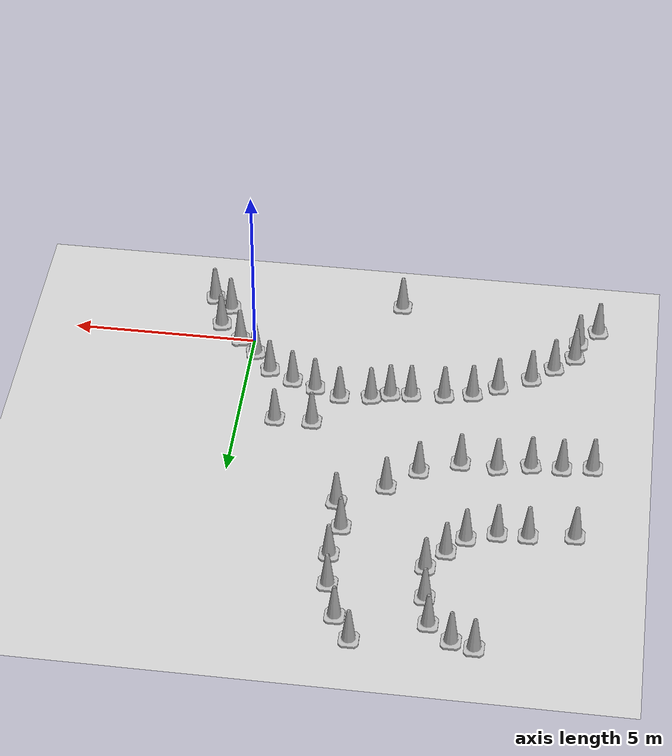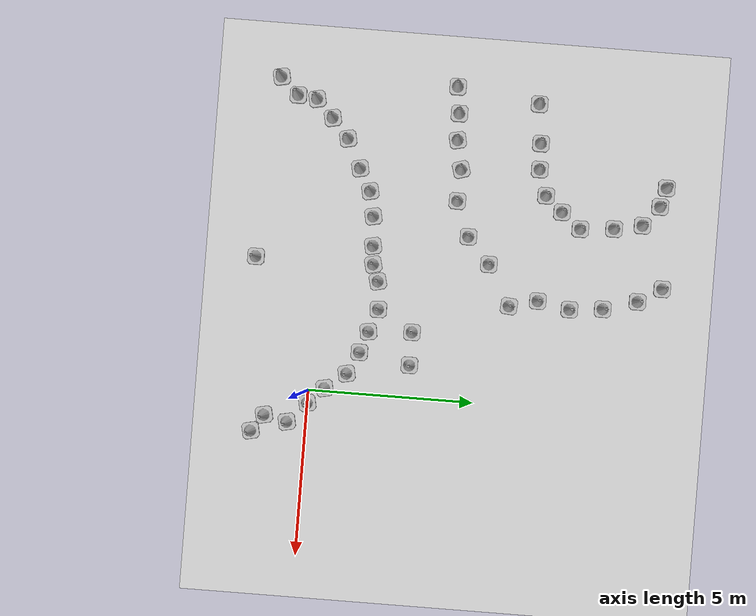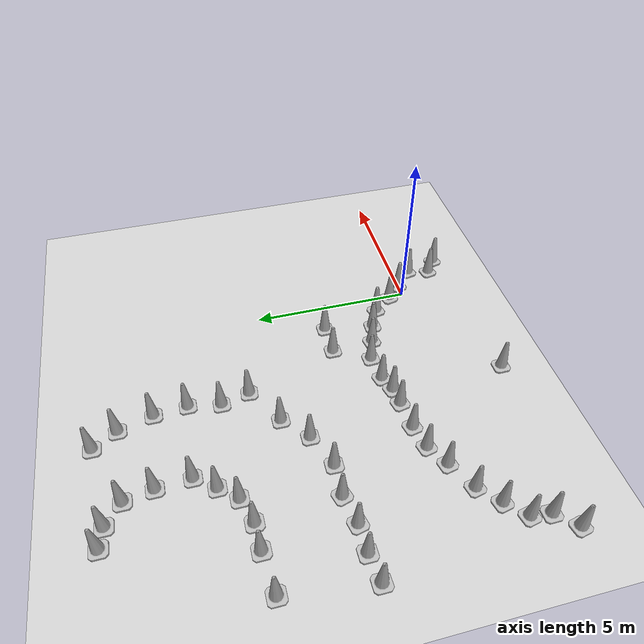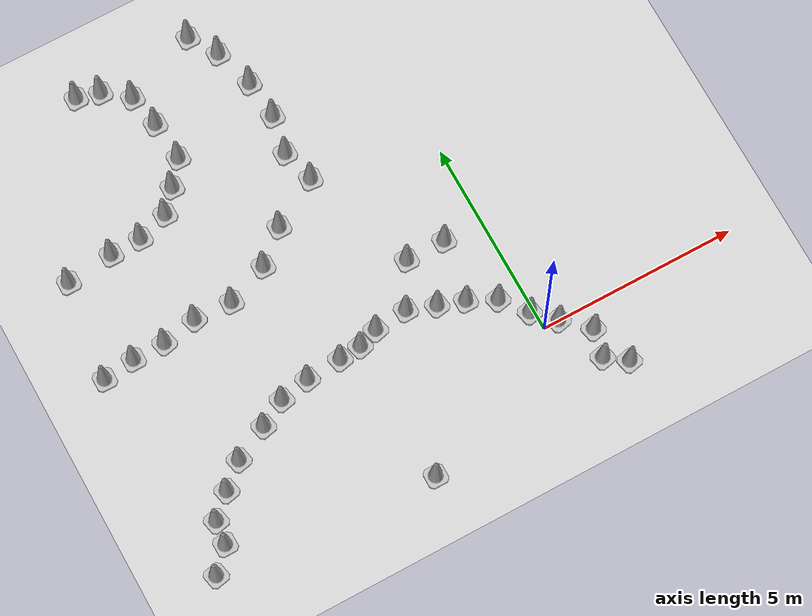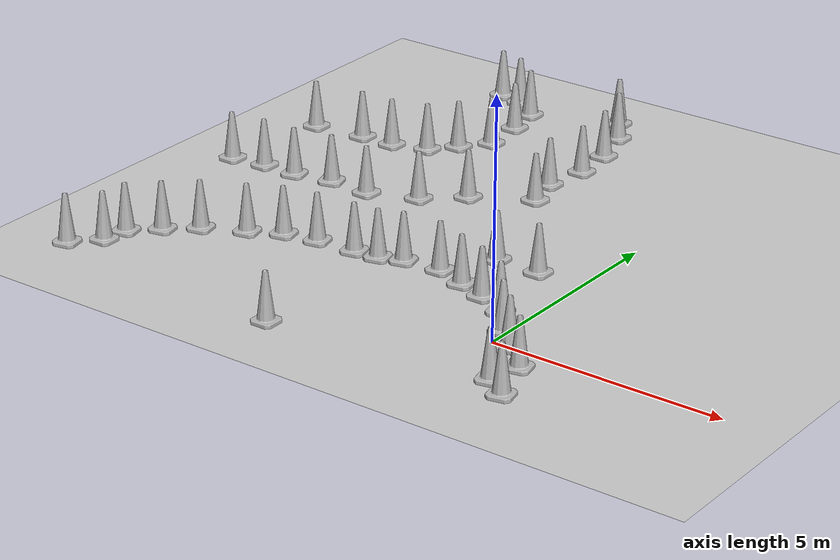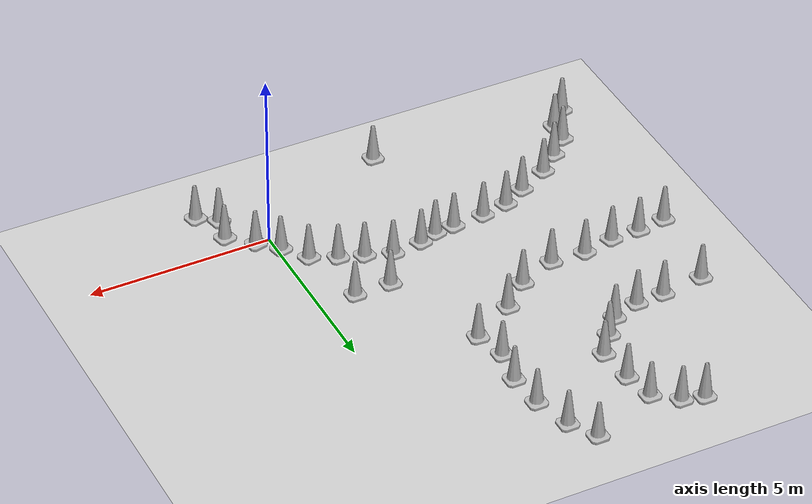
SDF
<sdf version="1.7">
 <world name="empty">
  <model name="ground_plane">
   <static>1</static>
   <link name="link">
    <collision name="collision">
     <geometry><plane><normal>0 0 1</normal><size>100 100</size></plane></geometry>
     <surface>
      <contact><collide_bitmask>65535</collide_bitmask></contact>
      <friction><ode><mu>100</mu><mu2>50</mu2></ode></friction>
     </surface>
    </collision>
    <visual name="visual">
     <cast_shadows>0</cast_shadows>
     <geometry><plane><normal>0 0 1</normal><size>100 100</size></plane></geometry>
     <material>
      <script><uri>file://media/materials/scripts/gazebo.material</uri><name>Gazebo/Grey</name></script>
     </material>
    </visual>
   </link>
  </model>
  <model name="Construction Cone">
   <link name="link">
    <collision name="collision">
     <geometry>
      <mesh><scale>10 10 10</scale><uri>model://construction_cone/meshes/construction_cone.dae</uri></mesh>
     </geometry>
    </collision>
    <visual name="visual">
     <geometry>
      <mesh><scale>10 10 10</scale><uri>model://construction_cone/meshes/construction_cone.dae</uri></mesh>
     </geometry>
    </visual>
    <inertial>
     <inertia><ixx>1</ixx><ixy>0</ixy><ixz>0</ixz><iyy>1</iyy><iyz>0</iyz><izz>1</izz></inertia>
     <mass>1</mass>
    </inertial>
   </link>
   <pose>-9.18463 6.3043 -0 0 -1e-06 0</pose>
  </model>
  <model name="Construction Cone_clone">
   <link name="link">
    <collision name="collision">
     <geometry>
      <mesh><scale>10 10 10</scale><uri>model://construction_cone/meshes/construction_cone.dae</uri></mesh>
     </geometry>
    </collision>
    <visual name="visual">
     <geometry>
      <mesh><scale>10 10 10</scale><uri>model://construction_cone/meshes/construction_cone.dae</uri></mesh>
     </geometry>
    </visual>
    <inertial>
     <inertia><ixx>1</ixx><ixy>0</ixy><ixz>0</ixz><iyy>1</iyy><iyz>0</iyz><izz>1</izz></inertia>
     <mass>1</mass>
    </inertial>
   </link>
   <pose>-9.5154 3.80513 -1e-05 -1e-06 0 0</pose>
  </model>
  <model name="Construction Cone_clone_0">
   <link name="link">
    <collision name="collision">
     <geometry>
      <mesh><scale>10 10 10</scale><uri>model://construction_cone/meshes/construction_cone.dae</uri></mesh>
     </geometry>
    </collision>
    <visual name="visual">
     <geometry>
      <mesh><scale>10 10 10</scale><uri>model://construction_cone/meshes/construction_cone.dae</uri></mesh>
     </geometry>
    </visual>
    <inertial>
     <inertia><ixx>1</ixx><ixy>0</ixy><ixz>0</ixz><iyy>1</iyy><iyz>0</iyz><izz>1</izz></inertia>
     <mass>1</mass>
    </inertial>
   </link>
   <pose>-8 6.44007 -0 0 -1e-06 0</pose>
  </model>
  <model name="Construction Cone_clone_1">
   <link name="link">
    <collision name="collision">
     <geometry>
      <mesh><scale>10 10 10</scale><uri>model://construction_cone/meshes/construction_cone.dae</uri></mesh>
     </geometry>
    </collision>
    <visual name="visual">
     <geometry>
      <mesh><scale>10 10 10</scale><uri>model://construction_cone/meshes/construction_cone.dae</uri></mesh>
     </geometry>
    </visual>
    <inertial>
     <inertia><ixx>1</ixx><ixy>0</ixy><ixz>0</ixz><iyy>1</iyy><iyz>0</iyz><izz>1</izz></inertia>
     <mass>1</mass>
    </inertial>
   </link>
   <pose>-7.21438 6.4666 -0 0 -1e-06 -0.002933</pose>
  </model>
  <model name="Construction Cone_clone_3">
   <link name="link">
    <collision name="collision">
     <geometry>
      <mesh><scale>10 10 10</scale><uri>model://construction_cone/meshes/construction_cone.dae</uri></mesh>
     </geometry>
    </collision>
    <visual name="visual">
     <geometry>
      <mesh><scale>10 10 10</scale><uri>model://construction_cone/meshes/construction_cone.dae</uri></mesh>
     </geometry>
    </visual>
    <inertial>
     <inertia><ixx>1</ixx><ixy>0</ixy><ixz>0</ixz><iyy>1</iyy><iyz>0</iyz><izz>1</izz></inertia>
     <mass>1</mass>
    </inertial>
   </link>
   <pose>-7.90339 3.92291 -0 -0 -1e-06 0.214535</pose>
  </model>
  <model name="Construction Cone_clone_7">
   <link name="link">
    <collision name="collision">
     <geometry>
      <mesh><scale>10 10 10</scale><uri>model://construction_cone/meshes/construction_cone.dae</uri></mesh>
     </geometry>
    </collision>
    <visual name="visual">
     <geometry>
      <mesh><scale>10 10 10</scale><uri>model://construction_cone/meshes/construction_cone.dae</uri></mesh>
     </geometry>
    </visual>
    <inertial>
     <inertia><ixx>1</ixx><ixy>0</ixy><ixz>0</ixz><iyy>1</iyy><iyz>0</iyz><izz>1</izz></inertia>
     <mass>1</mass>
    </inertial>
   </link>
   <pose>-6.43868 6.71892 -0 0 -0 0.002001</pose>
  </model>
  <model name="Construction Cone_clone_8">
   <link name="link">
    <collision name="collision">
     <geometry>
      <mesh><scale>10 10 10</scale><uri>model://construction_cone/meshes/construction_cone.dae</uri></mesh>
     </geometry>
    </collision>
    <visual name="visual">
     <geometry>
      <mesh><scale>10 10 10</scale><uri>model://construction_cone/meshes/construction_cone.dae</uri></mesh>
     </geometry>
    </visual>
    <inertial>
     <inertia><ixx>1</ixx><ixy>0</ixy><ixz>0</ixz><iyy>1</iyy><iyz>0</iyz><izz>1</izz></inertia>
     <mass>1</mass>
    </inertial>
   </link>
   <pose>-5.97964 7.2406 -0 0 -1e-06 0.001989</pose>
  </model>
  <model name="Construction Cone_clone_9">
   <link name="link">
    <collision name="collision">
     <geometry>
      <mesh><scale>10 10 10</scale><uri>model://construction_cone/meshes/construction_cone.dae</uri></mesh>
     </geometry>
    </collision>
    <visual name="visual">
     <geometry>
      <mesh><scale>10 10 10</scale><uri>model://construction_cone/meshes/construction_cone.dae</uri></mesh>
     </geometry>
    </visual>
    <inertial>
     <inertia><ixx>1</ixx><ixy>0</ixy><ixz>0</ixz><iyy>1</iyy><iyz>0</iyz><izz>1</izz></inertia>
     <mass>1</mass>
    </inertial>
   </link>
   <pose>-5.51474 7.83077 -0 -0 -1e-06 0.000735</pose>
  </model>
  <model name="Construction Cone_clone_11">
   <link name="link">
    <collision name="collision">
     <geometry>
      <mesh><scale>10 10 10</scale><uri>model://construction_cone/meshes/construction_cone.dae</uri></mesh>
     </geometry>
    </collision>
    <visual name="visual">
     <geometry>
      <mesh><scale>10 10 10</scale><uri>model://construction_cone/meshes/construction_cone.dae</uri></mesh>
     </geometry>
    </visual>
    <inertial>
     <inertia><ixx>1</ixx><ixy>0</ixy><ixz>0</ixz><iyy>1</iyy><iyz>0</iyz><izz>1</izz></inertia>
     <mass>1</mass>
    </inertial>
   </link>
   <pose>-3.01658 5.86067 -7e-06 -4e-06 -0 -0.086805</pose>
  </model>
  <model name="Construction Cone_clone_12">
   <link name="link">
    <collision name="collision">
     <geometry>
      <mesh><scale>10 10 10</scale><uri>model://construction_cone/meshes/construction_cone.dae</uri></mesh>
     </geometry>
    </collision>
    <visual name="visual">
     <geometry>
      <mesh><scale>10 10 10</scale><uri>model://construction_cone/meshes/construction_cone.dae</uri></mesh>
     </geometry>
    </visual>
    <inertial>
     <inertia><ixx>1</ixx><ixy>0</ixy><ixz>0</ixz><iyy>1</iyy><iyz>0</iyz><izz>1</izz></inertia>
     <mass>1</mass>
    </inertial>
   </link>
   <pose>-2 3 -0 0 -1e-06 0</pose>
  </model>
  <model name="Construction Cone_clone_15">
   <link name="link">
    <collision name="collision">
     <geometry>
      <mesh><scale>10 10 10</scale><uri>model://construction_cone/meshes/construction_cone.dae</uri></mesh>
     </geometry>
    </collision>
    <visual name="visual">
     <geometry>
      <mesh><scale>10 10 10</scale><uri>model://construction_cone/meshes/construction_cone.dae</uri></mesh>
     </geometry>
    </visual>
    <inertial>
     <inertia><ixx>1</ixx><ixy>0</ixy><ixz>0</ixz><iyy>1</iyy><iyz>0</iyz><izz>1</izz></inertia>
     <mass>1</mass>
    </inertial>
   </link>
   <pose>-1 3 -0 0 -1e-06 0</pose>
  </model>
  <model name="Construction Cone_clone_17">
   <link name="link">
    <collision name="collision">
     <geometry>
      <mesh><scale>10 10 10</scale><uri>model://construction_cone/meshes/construction_cone.dae</uri></mesh>
     </geometry>
    </collision>
    <visual name="visual">
     <geometry>
      <mesh><scale>10 10 10</scale><uri>model://construction_cone/meshes/construction_cone.dae</uri></mesh>
     </geometry>
    </visual>
    <inertial>
     <inertia><ixx>1</ixx><ixy>0</ixy><ixz>0</ixz><iyy>1</iyy><iyz>0</iyz><izz>1</izz></inertia>
     <mass>1</mass>
    </inertial>
   </link>
   <pose>-3.92107 -1.88779 -0 0 -0 0.002196</pose>
  </model>
  <model name="Construction Cone_clone_20">
   <link name="link">
    <collision name="collision">
     <geometry>
      <mesh><scale>10 10 10</scale><uri>model://construction_cone/meshes/construction_cone.dae</uri></mesh>
     </geometry>
    </collision>
    <visual name="visual">
     <geometry>
      <mesh><scale>10 10 10</scale><uri>model://construction_cone/meshes/construction_cone.dae</uri></mesh>
     </geometry>
    </visual>
    <inertial>
     <inertia><ixx>1</ixx><ixy>0</ixy><ixz>0</ixz><iyy>1</iyy><iyz>0</iyz><izz>1</izz></inertia>
     <mass>1</mass>
    </inertial>
   </link>
   <pose>-2.61076 1.92981 0 0 -0 0.029847</pose>
  </model>
  <model name="Construction Cone_clone_33">
   <link name="link">
    <collision name="collision">
     <geometry>
      <mesh><scale>10 10 10</scale><uri>model://construction_cone/meshes/construction_cone.dae</uri></mesh>
     </geometry>
    </collision>
    <visual name="visual">
     <geometry>
      <mesh><scale>10 10 10</scale><uri>model://construction_cone/meshes/construction_cone.dae</uri></mesh>
     </geometry>
    </visual>
    <inertial>
     <inertia><ixx>1</ixx><ixy>0</ixy><ixz>0</ixz><iyy>1</iyy><iyz>0</iyz><izz>1</izz></inertia>
     <mass>1</mass>
    </inertial>
   </link>
   <pose>-1.91574 1.68243 -0 0 -0 0.152894</pose>
  </model>
  <model name="Construction Cone_clone_35">
   <link name="link">
    <collision name="collision">
     <geometry>
      <mesh><scale>10 10 10</scale><uri>model://construction_cone/meshes/construction_cone.dae</uri></mesh>
     </geometry>
    </collision>
    <visual name="visual">
     <geometry>
      <mesh><scale>10 10 10</scale><uri>model://construction_cone/meshes/construction_cone.dae</uri></mesh>
     </geometry>
    </visual>
    <inertial>
     <inertia><ixx>1</ixx><ixy>0</ixy><ixz>0</ixz><iyy>1</iyy><iyz>0</iyz><izz>1</izz></inertia>
     <mass>1</mass>
    </inertial>
   </link>
   <pose>-1.27313 1.45906 0 1e-06 -1e-06 0.000419</pose>
  </model>
  <model name="Construction Cone_clone_59">
   <link name="link">
    <collision name="collision">
     <geometry>
      <mesh><scale>10 10 10</scale><uri>model://construction_cone/meshes/construction_cone.dae</uri></mesh>
     </geometry>
    </collision>
    <visual name="visual">
     <geometry>
      <mesh><scale>10 10 10</scale><uri>model://construction_cone/meshes/construction_cone.dae</uri></mesh>
     </geometry>
    </visual>
    <inertial>
     <inertia><ixx>1</ixx><ixy>0</ixy><ixz>0</ixz><iyy>1</iyy><iyz>0</iyz><izz>1</izz></inertia>
     <mass>1</mass>
    </inertial>
   </link>
   <pose>-4.51183 1.61968 -0 0 -0 0.206225</pose>
  </model>
  <model name="Construction Cone_clone_59_clone">
   <link name="link">
    <collision name="collision">
     <geometry>
      <mesh><scale>10 10 10</scale><uri>model://construction_cone/meshes/construction_cone.dae</uri></mesh>
     </geometry>
    </collision>
    <visual name="visual">
     <geometry>
      <mesh><scale>10 10 10</scale><uri>model://construction_cone/meshes/construction_cone.dae</uri></mesh>
     </geometry>
    </visual>
    <inertial>
     <inertia><ixx>1</ixx><ixy>0</ixy><ixz>0</ixz><iyy>1</iyy><iyz>0</iyz><izz>1</izz></inertia>
     <mass>1</mass>
    </inertial>
   </link>
   <pose>-5.40428 1.55794 -0 -0 -1e-06 0.206225</pose>
  </model>
  <model name="Construction Cone_clone_59_clone_0">
   <link name="link">
    <collision name="collision">
     <geometry>
      <mesh><scale>10 10 10</scale><uri>model://construction_cone/meshes/construction_cone.dae</uri></mesh>
     </geometry>
    </collision>
    <visual name="visual">
     <geometry>
      <mesh><scale>10 10 10</scale><uri>model://construction_cone/meshes/construction_cone.dae</uri></mesh>
     </geometry>
    </visual>
    <inertial>
     <inertia><ixx>1</ixx><ixy>0</ixy><ixz>0</ixz><iyy>1</iyy><iyz>0</iyz><izz>1</izz></inertia>
     <mass>1</mass>
    </inertial>
   </link>
   <pose>-0.599827 1.12459 -2e-06 4e-06 -0 0.206225</pose>
  </model>
  <model name="Construction Cone_clone_59_clone_1">
   <link name="link">
    <collision name="collision">
     <geometry>
      <mesh><scale>10 10 10</scale><uri>model://construction_cone/meshes/construction_cone.dae</uri></mesh>
     </geometry>
    </collision>
    <visual name="visual">
     <geometry>
      <mesh><scale>10 10 10</scale><uri>model://construction_cone/meshes/construction_cone.dae</uri></mesh>
     </geometry>
    </visual>
    <inertial>
     <inertia><ixx>1</ixx><ixy>0</ixy><ixz>0</ixz><iyy>1</iyy><iyz>0</iyz><izz>1</izz></inertia>
     <mass>1</mass>
    </inertial>
   </link>
   <pose>-0.106114 0.495019 -0 0 -0 0.206225</pose>
  </model>
  <model name="Construction Cone_clone_30_clone">
   <link name="link">
    <collision name="collision">
     <geometry>
      <mesh><scale>10 10 10</scale><uri>model://construction_cone/meshes/construction_cone.dae</uri></mesh>
     </geometry>
    </collision>
    <visual name="visual">
     <geometry>
      <mesh><scale>10 10 10</scale><uri>model://construction_cone/meshes/construction_cone.dae</uri></mesh>
     </geometry>
    </visual>
    <inertial>
     <inertia><ixx>1</ixx><ixy>0</ixy><ixz>0</ixz><iyy>1</iyy><iyz>0</iyz><izz>1</izz></inertia>
     <mass>1</mass>
    </inertial>
   </link>
   <pose>-8.88633 -0.991657 -0 0 -0 0.015434</pose>
  </model>
  <model name="Construction Cone_clone_59_clone_clone">
   <link name="link">
    <collision name="collision">
     <geometry>
      <mesh><scale>10 10 10</scale><uri>model://construction_cone/meshes/construction_cone.dae</uri></mesh>
     </geometry>
    </collision>
    <visual name="visual">
     <geometry>
      <mesh><scale>10 10 10</scale><uri>model://construction_cone/meshes/construction_cone.dae</uri></mesh>
     </geometry>
    </visual>
    <inertial>
     <inertia><ixx>1</ixx><ixy>0</ixy><ixz>0</ixz><iyy>1</iyy><iyz>0</iyz><izz>1</izz></inertia>
     <mass>1</mass>
    </inertial>
   </link>
   <pose>-6.1573 1.40512 -0 -0 -1e-06 0.206225</pose>
  </model>
  <model name="Construction Cone_clone_59_clone_clone_0">
   <link name="link">
    <collision name="collision">
     <geometry>
      <mesh><scale>10 10 10</scale><uri>model://construction_cone/meshes/construction_cone.dae</uri></mesh>
     </geometry>
    </collision>
    <visual name="visual">
     <geometry>
      <mesh><scale>10 10 10</scale><uri>model://construction_cone/meshes/construction_cone.dae</uri></mesh>
     </geometry>
    </visual>
    <inertial>
     <inertia><ixx>1</ixx><ixy>0</ixy><ixz>0</ixz><iyy>1</iyy><iyz>0</iyz><izz>1</izz></inertia>
     <mass>1</mass>
    </inertial>
   </link>
   <pose>-6.82166 1.04752 -1e-06 1e-06 -2e-06 0.206225</pose>
  </model>
  <model name="Construction Cone_clone_59_clone_clone_1">
   <link name="link">
    <collision name="collision">
     <geometry>
      <mesh><scale>10 10 10</scale><uri>model://construction_cone/meshes/construction_cone.dae</uri></mesh>
     </geometry>
    </collision>
    <visual name="visual">
     <geometry>
      <mesh><scale>10 10 10</scale><uri>model://construction_cone/meshes/construction_cone.dae</uri></mesh>
     </geometry>
    </visual>
    <inertial>
     <inertia><ixx>1</ixx><ixy>0</ixy><ixz>0</ixz><iyy>1</iyy><iyz>0</iyz><izz>1</izz></inertia>
     <mass>1</mass>
    </inertial>
   </link>
   <pose>-7.68992 0.613223 -1e-05 0 -0 0.206225</pose>
  </model>
  <model name="Construction Cone_clone_59_clone_clone_2">
   <link name="link">
    <collision name="collision">
     <geometry>
      <mesh><scale>10 10 10</scale><uri>model://construction_cone/meshes/construction_cone.dae</uri></mesh>
     </geometry>
    </collision>
    <visual name="visual">
     <geometry>
      <mesh><scale>10 10 10</scale><uri>model://construction_cone/meshes/construction_cone.dae</uri></mesh>
     </geometry>
    </visual>
    <inertial>
     <inertia><ixx>1</ixx><ixy>0</ixy><ixz>0</ixz><iyy>1</iyy><iyz>0</iyz><izz>1</izz></inertia>
     <mass>1</mass>
    </inertial>
   </link>
   <pose>-8.27759 0.102404 -0 -0 -1e-06 0.206225</pose>
  </model>
  <model name="Construction Cone_clone_59_clone_clone_3">
   <link name="link">
    <collision name="collision">
     <geometry>
      <mesh><scale>10 10 10</scale><uri>model://construction_cone/meshes/construction_cone.dae</uri></mesh>
     </geometry>
    </collision>
    <visual name="visual">
     <geometry>
      <mesh><scale>10 10 10</scale><uri>model://construction_cone/meshes/construction_cone.dae</uri></mesh>
     </geometry>
    </visual>
    <inertial>
     <inertia><ixx>1</ixx><ixy>0</ixy><ixz>0</ixz><iyy>1</iyy><iyz>0</iyz><izz>1</izz></inertia>
     <mass>1</mass>
    </inertial>
   </link>
   <pose>-8.81392 -0.408497 -7e-06 -4e-06 -1e-06 0.206225</pose>
  </model>
  <model name="Construction Cone_clone_59_clone_clone_4">
   <link name="link">
    <collision name="collision">
     <geometry>
      <mesh><scale>10 10 10</scale><uri>model://construction_cone/meshes/construction_cone.dae</uri></mesh>
     </geometry>
    </collision>
    <visual name="visual">
     <geometry>
      <mesh><scale>10 10 10</scale><uri>model://construction_cone/meshes/construction_cone.dae</uri></mesh>
     </geometry>
    </visual>
    <inertial>
     <inertia><ixx>1</ixx><ixy>0</ixy><ixz>0</ixz><iyy>1</iyy><iyz>0</iyz><izz>1</izz></inertia>
     <mass>1</mass>
    </inertial>
   </link>
   <pose>-9.40143 -1.53258 -5e-06 -4e-06 1e-06 0.206225</pose>
  </model>
  <model name="Construction Cone_clone_59_clone_clone_12">
   <link name="link">
    <collision name="collision">
     <geometry>
      <mesh><scale>10 10 10</scale><uri>model://construction_cone/meshes/construction_cone.dae</uri></mesh>
     </geometry>
    </collision>
    <visual name="visual">
     <geometry>
      <mesh><scale>10 10 10</scale><uri>model://construction_cone/meshes/construction_cone.dae</uri></mesh>
     </geometry>
    </visual>
    <inertial>
     <inertia><ixx>1</ixx><ixy>0</ixy><ixz>0</ixz><iyy>1</iyy><iyz>0</iyz><izz>1</izz></inertia>
     <mass>1</mass>
    </inertial>
   </link>
   <pose>1.34409 -1.63494 -0 0 -0 0.207821</pose>
  </model>
  <model name="Construction Cone_clone_59_clone_clone_13">
   <link name="link">
    <collision name="collision">
     <geometry>
      <mesh><scale>10 10 10</scale><uri>model://construction_cone/meshes/construction_cone.dae</uri></mesh>
     </geometry>
    </collision>
    <visual name="visual">
     <geometry>
      <mesh><scale>10 10 10</scale><uri>model://construction_cone/meshes/construction_cone.dae</uri></mesh>
     </geometry>
    </visual>
    <inertial>
     <inertia><ixx>1</ixx><ixy>0</ixy><ixz>0</ixz><iyy>1</iyy><iyz>0</iyz><izz>1</izz></inertia>
     <mass>1</mass>
    </inertial>
   </link>
   <pose>0.835369 -1.2692 0 0 -0 0.211317</pose>
  </model>
  <model name="Construction Cone_clone_59_clone_clone_15">
   <link name="link">
    <collision name="collision">
     <geometry>
      <mesh><scale>10 10 10</scale><uri>model://construction_cone/meshes/construction_cone.dae</uri></mesh>
     </geometry>
    </collision>
    <visual name="visual">
     <geometry>
      <mesh><scale>10 10 10</scale><uri>model://construction_cone/meshes/construction_cone.dae</uri></mesh>
     </geometry>
    </visual>
    <inertial>
     <inertia><ixx>1</ixx><ixy>0</ixy><ixz>0</ixz><iyy>1</iyy><iyz>0</iyz><izz>1</izz></inertia>
     <mass>1</mass>
    </inertial>
   </link>
   <pose>0.383157 0.008766 -0 0 -0 0.206225</pose>
  </model>
  <model name="Construction Cone_clone_59_clone_clone_16">
   <link name="link">
    <collision name="collision">
     <geometry>
      <mesh><scale>10 10 10</scale><uri>model://construction_cone/meshes/construction_cone.dae</uri></mesh>
     </geometry>
    </collision>
    <visual name="visual">
     <geometry>
      <mesh><scale>10 10 10</scale><uri>model://construction_cone/meshes/construction_cone.dae</uri></mesh>
     </geometry>
    </visual>
    <inertial>
     <inertia><ixx>1</ixx><ixy>0</ixy><ixz>0</ixz><iyy>1</iyy><iyz>0</iyz><izz>1</izz></inertia>
     <mass>1</mass>
    </inertial>
   </link>
   <pose>0.994217 -0.564096 -0 -0 -1e-06 0.206225</pose>
  </model>
  <model name="Construction Cone_clone_59_clone_clone_14">
   <link name="link">
    <collision name="collision">
     <geometry>
      <mesh><scale>10 10 10</scale><uri>model://construction_cone/meshes/construction_cone.dae</uri></mesh>
     </geometry>
    </collision>
    <visual name="visual">
     <geometry>
      <mesh><scale>10 10 10</scale><uri>model://construction_cone/meshes/construction_cone.dae</uri></mesh>
     </geometry>
    </visual>
    <inertial>
     <inertia><ixx>1</ixx><ixy>0</ixy><ixz>0</ixz><iyy>1</iyy><iyz>0</iyz><izz>1</izz></inertia>
     <mass>1</mass>
    </inertial>
   </link>
   <pose>-3.45128 1.84926 0 0 -0 0.23894</pose>
  </model>
  <model name="Construction Cone_clone_59_clone_clone_17">
   <link name="link">
    <collision name="collision">
     <geometry>
      <mesh><scale>10 10 10</scale><uri>model://construction_cone/meshes/construction_cone.dae</uri></mesh>
     </geometry>
    </collision>
    <visual name="visual">
     <geometry>
      <mesh><scale>10 10 10</scale><uri>model://construction_cone/meshes/construction_cone.dae</uri></mesh>
     </geometry>
    </visual>
    <inertial>
     <inertia><ixx>1</ixx><ixy>0</ixy><ixz>0</ixz><iyy>1</iyy><iyz>0</iyz><izz>1</izz></inertia>
     <mass>1</mass>
    </inertial>
   </link>
   <pose>-3.95404 1.66832 -0 0 -1e-06 0.241567</pose>
  </model>
  <model name="Construction Cone_clone_3_clone">
   <link name="link">
    <collision name="collision">
     <geometry>
      <mesh><scale>10 10 10</scale><uri>model://construction_cone/meshes/construction_cone.dae</uri></mesh>
     </geometry>
    </collision>
    <visual name="visual">
     <geometry>
      <mesh><scale>10 10 10</scale><uri>model://construction_cone/meshes/construction_cone.dae</uri></mesh>
     </geometry>
    </visual>
    <inertial>
     <inertia><ixx>1</ixx><ixy>0</ixy><ixz>0</ixz><iyy>1</iyy><iyz>0</iyz><izz>1</izz></inertia>
     <mass>1</mass>
    </inertial>
   </link>
   <pose>-7.0271 4.09674 -1e-06 1e-06 -2e-06 0.287577</pose>
  </model>
  <model name="Construction Cone_clone_3_clone_clone_0">
   <link name="link">
    <collision name="collision">
     <geometry>
      <mesh><scale>10 10 10</scale><uri>model://construction_cone/meshes/construction_cone.dae</uri></mesh>
     </geometry>
    </collision>
    <visual name="visual">
     <geometry>
      <mesh><scale>10 10 10</scale><uri>model://construction_cone/meshes/construction_cone.dae</uri></mesh>
     </geometry>
    </visual>
    <inertial>
     <inertia><ixx>1</ixx><ixy>0</ixy><ixz>0</ixz><iyy>1</iyy><iyz>0</iyz><izz>1</izz></inertia>
     <mass>1</mass>
    </inertial>
   </link>
   <pose>-5.01515 4.47485 -0 0 -1e-06 0</pose>
  </model>
  <model name="Construction Cone_clone_3_clone_clone">
   <link name="link">
    <collision name="collision">
     <geometry>
      <mesh><scale>10 10 10</scale><uri>model://construction_cone/meshes/construction_cone.dae</uri></mesh>
     </geometry>
    </collision>
    <visual name="visual">
     <geometry>
      <mesh><scale>10 10 10</scale><uri>model://construction_cone/meshes/construction_cone.dae</uri></mesh>
     </geometry>
    </visual>
    <inertial>
     <inertia><ixx>1</ixx><ixy>0</ixy><ixz>0</ixz><iyy>1</iyy><iyz>0</iyz><izz>1</izz></inertia>
     <mass>1</mass>
    </inertial>
   </link>
   <pose>-6.06856 4.05627 -0 0 -0 -0.021669</pose>
  </model>
  <model name="Construction Cone_clone_3_clone_clone_1">
   <link name="link">
    <collision name="collision">
     <geometry>
      <mesh><scale>10 10 10</scale><uri>model://construction_cone/meshes/construction_cone.dae</uri></mesh>
     </geometry>
    </collision>
    <visual name="visual">
     <geometry>
      <mesh><scale>10 10 10</scale><uri>model://construction_cone/meshes/construction_cone.dae</uri></mesh>
     </geometry>
    </visual>
    <inertial>
     <inertia><ixx>1</ixx><ixy>0</ixy><ixz>0</ixz><iyy>1</iyy><iyz>0</iyz><izz>1</izz></inertia>
     <mass>1</mass>
    </inertial>
   </link>
   <pose>-4.23192 5.15587 -0 0 0 -0.000264</pose>
  </model>
  <model name="Construction Cone_clone_3_clone_0">
   <link name="link">
    <collision name="collision">
     <geometry>
      <mesh><scale>10 10 10</scale><uri>model://construction_cone/meshes/construction_cone.dae</uri></mesh>
     </geometry>
    </collision>
    <visual name="visual">
     <geometry>
      <mesh><scale>10 10 10</scale><uri>model://construction_cone/meshes/construction_cone.dae</uri></mesh>
     </geometry>
    </visual>
    <inertial>
     <inertia><ixx>1</ixx><ixy>0</ixy><ixz>0</ixz><iyy>1</iyy><iyz>0</iyz><izz>1</izz></inertia>
     <mass>1</mass>
    </inertial>
   </link>
   <pose>-8.71216 3.91055 -0 -0 -0 -0</pose>
  </model>
  <model name="Construction Cone_clone_11_clone">
   <link name="link">
    <collision name="collision">
     <geometry>
      <mesh><scale>10 10 10</scale><uri>model://construction_cone/meshes/construction_cone.dae</uri></mesh>
     </geometry>
    </collision>
    <visual name="visual">
     <geometry>
      <mesh><scale>10 10 10</scale><uri>model://construction_cone/meshes/construction_cone.dae</uri></mesh>
     </geometry>
    </visual>
    <inertial>
     <inertia><ixx>1</ixx><ixy>0</ixy><ixz>0</ixz><iyy>1</iyy><iyz>0</iyz><izz>1</izz></inertia>
     <mass>1</mass>
    </inertial>
   </link>
   <pose>-3.24143 6.71952 -0 0 -1e-06 0</pose>
  </model>
  <model name="Construction Cone_clone_11_clone_0">
   <link name="link">
    <collision name="collision">
     <geometry>
      <mesh><scale>10 10 10</scale><uri>model://construction_cone/meshes/construction_cone.dae</uri></mesh>
     </geometry>
    </collision>
    <visual name="visual">
     <geometry>
      <mesh><scale>10 10 10</scale><uri>model://construction_cone/meshes/construction_cone.dae</uri></mesh>
     </geometry>
    </visual>
    <inertial>
     <inertia><ixx>1</ixx><ixy>0</ixy><ixz>0</ixz><iyy>1</iyy><iyz>0</iyz><izz>1</izz></inertia>
     <mass>1</mass>
    </inertial>
   </link>
   <pose>-3.05902 7.6926 -0 0 -0 0</pose>
  </model>
  <model name="Construction Cone_clone_11_clone_1">
   <link name="link">
    <collision name="collision">
     <geometry>
      <mesh><scale>10 10 10</scale><uri>model://construction_cone/meshes/construction_cone.dae</uri></mesh>
     </geometry>
    </collision>
    <visual name="visual">
     <geometry>
      <mesh><scale>10 10 10</scale><uri>model://construction_cone/meshes/construction_cone.dae</uri></mesh>
     </geometry>
    </visual>
    <inertial>
     <inertia><ixx>1</ixx><ixy>0</ixy><ixz>0</ixz><iyy>1</iyy><iyz>0</iyz><izz>1</izz></inertia>
     <mass>1</mass>
    </inertial>
   </link>
   <pose>-3.1502 8.69614 0 -0 -0 -0</pose>
  </model>
  <model name="Construction Cone_clone_11_clone_2">
   <link name="link">
    <collision name="collision">
     <geometry>
      <mesh><scale>10 10 10</scale><uri>model://construction_cone/meshes/construction_cone.dae</uri></mesh>
     </geometry>
    </collision>
    <visual name="visual">
     <geometry>
      <mesh><scale>10 10 10</scale><uri>model://construction_cone/meshes/construction_cone.dae</uri></mesh>
     </geometry>
    </visual>
    <inertial>
     <inertia><ixx>1</ixx><ixy>0</ixy><ixz>0</ixz><iyy>1</iyy><iyz>0</iyz><izz>1</izz></inertia>
     <mass>1</mass>
    </inertial>
   </link>
   <pose>-3.45431 9.73007 -1e-05 -0 -0 -0</pose>
  </model>
  <model name="Construction Cone_clone_11_clone_3">
   <link name="link">
    <collision name="collision">
     <geometry>
      <mesh><scale>10 10 10</scale><uri>model://construction_cone/meshes/construction_cone.dae</uri></mesh>
     </geometry>
    </collision>
    <visual name="visual">
     <geometry>
      <mesh><scale>10 10 10</scale><uri>model://construction_cone/meshes/construction_cone.dae</uri></mesh>
     </geometry>
    </visual>
    <inertial>
     <inertia><ixx>1</ixx><ixy>0</ixy><ixz>0</ixz><iyy>1</iyy><iyz>0</iyz><izz>1</izz></inertia>
     <mass>1</mass>
    </inertial>
   </link>
   <pose>-3.89526 10.4447 -0 -0 -0 -0</pose>
  </model>
  <model name="Construction Cone_clone_11_clone_4">
   <link name="link">
    <collision name="collision">
     <geometry>
      <mesh><scale>10 10 10</scale><uri>model://construction_cone/meshes/construction_cone.dae</uri></mesh>
     </geometry>
    </collision>
    <visual name="visual">
     <geometry>
      <mesh><scale>10 10 10</scale><uri>model://construction_cone/meshes/construction_cone.dae</uri></mesh>
     </geometry>
    </visual>
    <inertial>
     <inertia><ixx>1</ixx><ixy>0</ixy><ixz>0</ixz><iyy>1</iyy><iyz>0</iyz><izz>1</izz></inertia>
     <mass>1</mass>
    </inertial>
   </link>
   <pose>-5.59812 8.84818 -0 0 -1e-06 0</pose>
  </model>
  <model name="Construction Cone_clone_11_clone_5">
   <link name="link">
    <collision name="collision">
     <geometry>
      <mesh><scale>10 10 10</scale><uri>model://construction_cone/meshes/construction_cone.dae</uri></mesh>
     </geometry>
    </collision>
    <visual name="visual">
     <geometry>
      <mesh><scale>10 10 10</scale><uri>model://construction_cone/meshes/construction_cone.dae</uri></mesh>
     </geometry>
    </visual>
    <inertial>
     <inertia><ixx>1</ixx><ixy>0</ixy><ixz>0</ixz><iyy>1</iyy><iyz>0</iyz><izz>1</izz></inertia>
     <mass>1</mass>
    </inertial>
   </link>
   <pose>-5.76538 9.69965 -0 0 -1e-06 0</pose>
  </model>
  <model name="Construction Cone_clone_11_clone_6">
   <link name="link">
    <collision name="collision">
     <geometry>
      <mesh><scale>10 10 10</scale><uri>model://construction_cone/meshes/construction_cone.dae</uri></mesh>
     </geometry>
    </collision>
    <visual name="visual">
     <geometry>
      <mesh><scale>10 10 10</scale><uri>model://construction_cone/meshes/construction_cone.dae</uri></mesh>
     </geometry>
    </visual>
    <inertial>
     <inertia><ixx>1</ixx><ixy>0</ixy><ixz>0</ixz><iyy>1</iyy><iyz>0</iyz><izz>1</izz></inertia>
     <mass>1</mass>
    </inertial>
   </link>
   <pose>-6.37359 10.1862 -0 0 -1e-06 0</pose>
  </model>
  <model name="Construction Cone_clone_11_clone_7">
   <link name="link">
    <collision name="collision">
     <geometry>
      <mesh><scale>10 10 10</scale><uri>model://construction_cone/meshes/construction_cone.dae</uri></mesh>
     </geometry>
    </collision>
    <visual name="visual">
     <geometry>
      <mesh><scale>10 10 10</scale><uri>model://construction_cone/meshes/construction_cone.dae</uri></mesh>
     </geometry>
    </visual>
    <inertial>
     <inertia><ixx>1</ixx><ixy>0</ixy><ixz>0</ixz><iyy>1</iyy><iyz>0</iyz><izz>1</izz></inertia>
     <mass>1</mass>
    </inertial>
   </link>
   <pose>-6.95134 10.3382 -0 0 -1e-06 0</pose>
  </model>
 </world>
</sdf>
